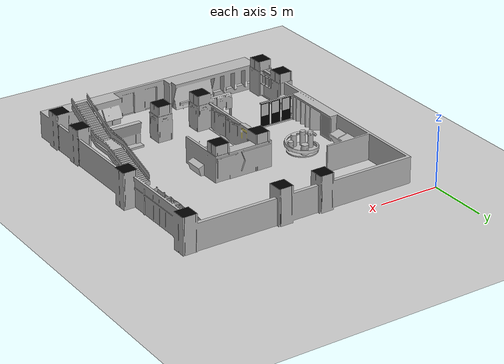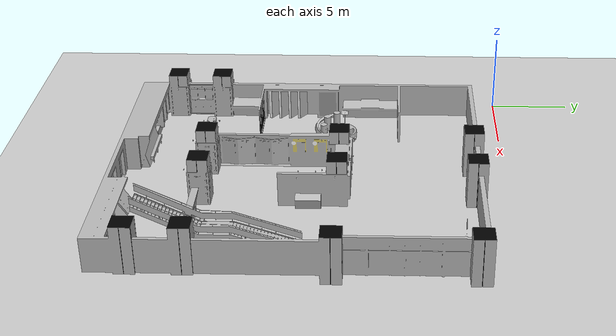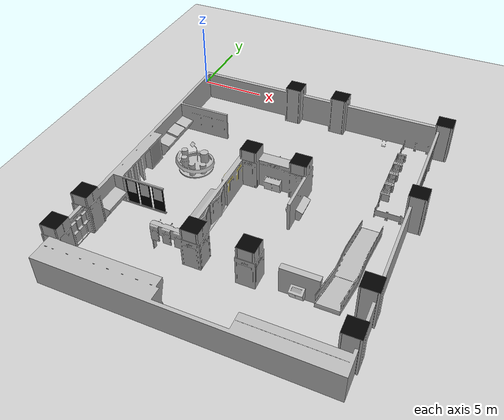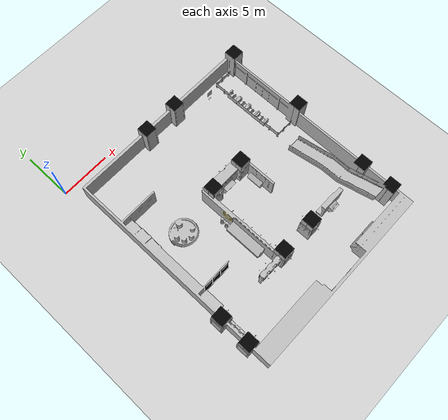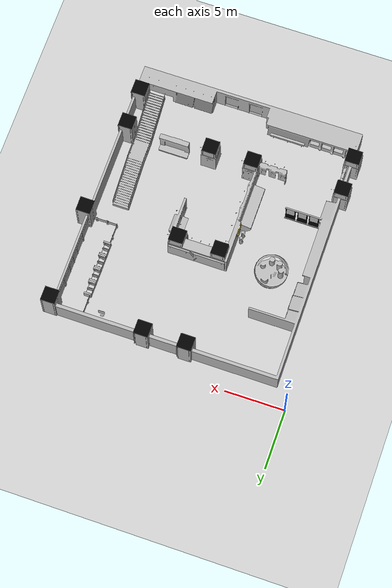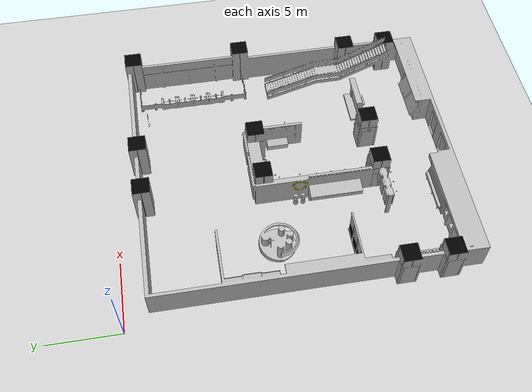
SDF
<sdf version="1.7">
 <world name="default">
  <model name="ground_plane">
   <static>1</static>
   <link name="link">
    <collision name="collision">
     <geometry><plane><normal>0 0 1</normal><size>100 100</size></plane></geometry>
     <surface><friction><ode><mu>100</mu><mu2>50</mu2></ode></friction></surface>
    </collision>
    <visual name="visual">
     <cast_shadows>0</cast_shadows>
     <geometry><plane><normal>0 0 1</normal><size>100 100</size></plane></geometry>
     <material>
      <script><uri>file://media/materials/scripts/gazebo.material</uri><name>Gazebo/Grey</name></script>
     </material>
    </visual>
   </link>
  </model>
  <model name="iscas_museum_0">
   <link name="link">
    <inertial><mass>15</mass></inertial>
    <collision name="collision">
     <pose>0 0 0 0 0 -1.57</pose>
     <geometry><mesh><uri>model://iscas_museum/meshes/ISCAS_museum.dae</uri></mesh></geometry>
    </collision>
    <visual name="visual">
     <pose>0 0 0 0 0 -1.57</pose>
     <geometry><mesh><uri>model://iscas_museum/meshes/ISCAS_museum.dae</uri></mesh></geometry>
    </visual>
   </link>
   <static>1</static>
   <pose>10.4524 -13.073 0 0 -0 0</pose>
  </model>
 </world>
</sdf>
